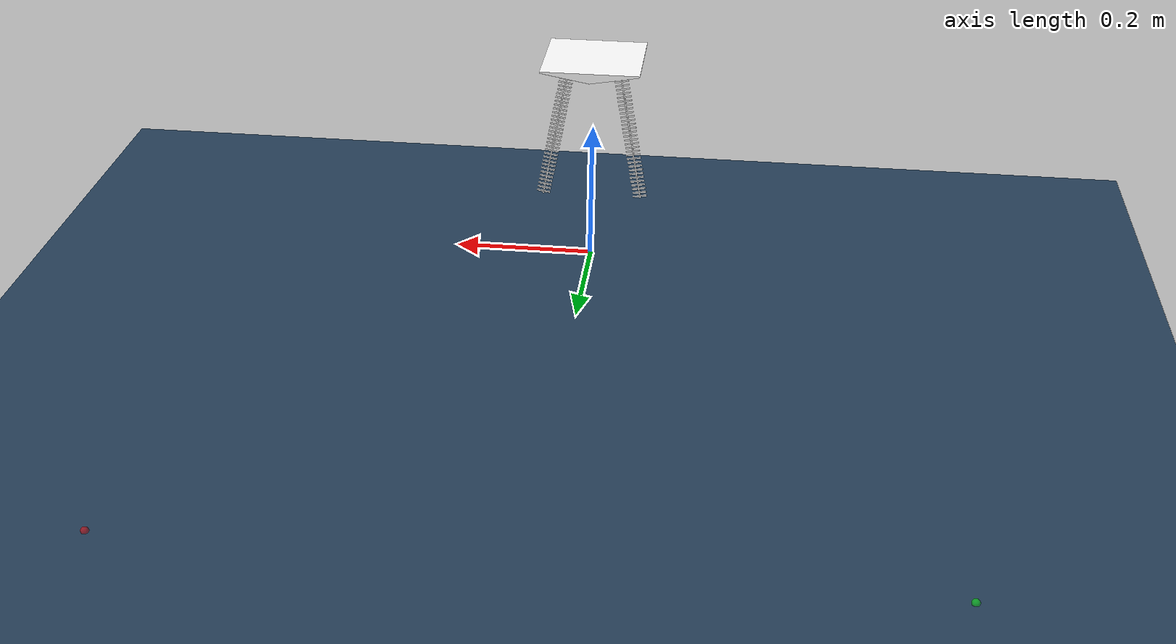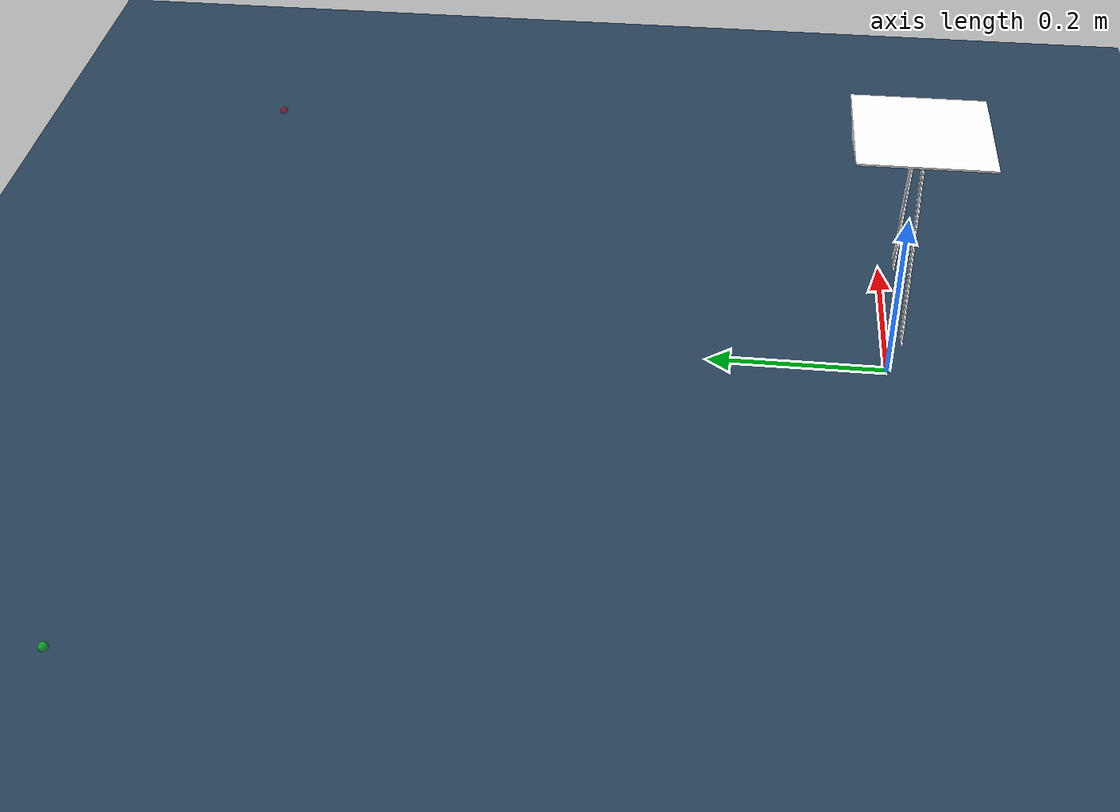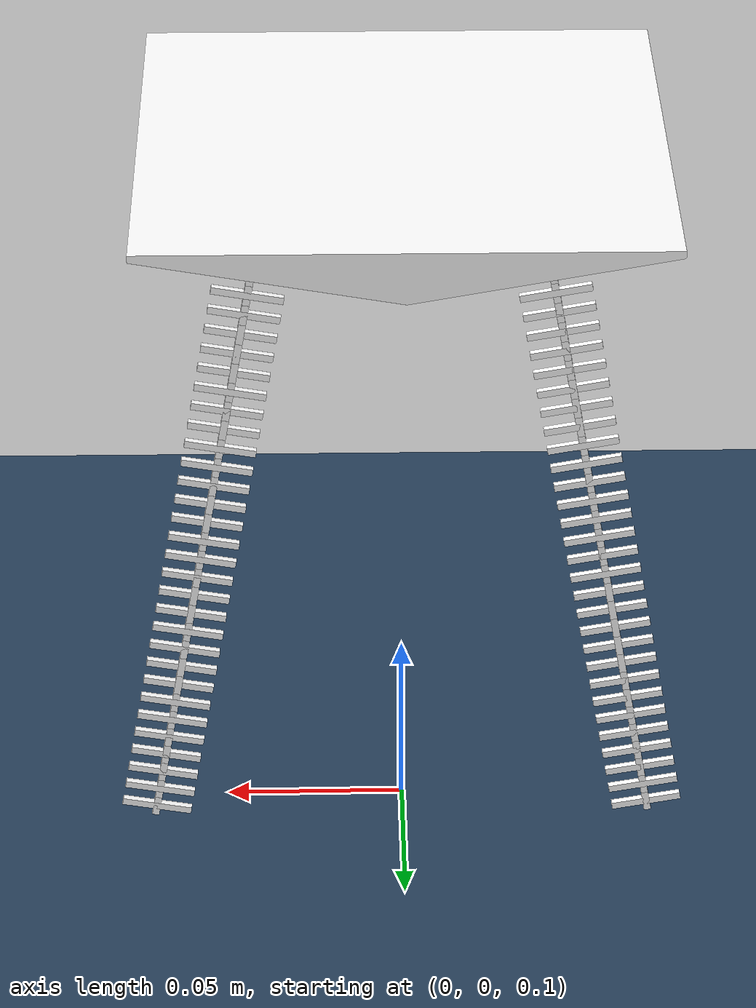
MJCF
<?xml version='1.0' encoding='utf-8'?>
<mujoco>
  <compiler autolimits="true" />
  <option timestep="0.01" gravity="0 0 -9.81" />
  <asset>
    <texture name="grid" type="2d" builtin="checker" width="512" height="512" rgb1=".1 .2 .3" rgb2=".2 .3 .4" />
    <material name="grid" texture="grid" texrepeat="10 10" texuniform="true" reflectance=".2" />
    <mesh name="palm" scale=".001 .001 .001" vertex=" 70   70   8.17               -70   70   8.17                70   -70   8.17                -70   -70   8.17                70   70   6.17               -70   70   6.17                70   -70   6.17                -70   -70   6.17                0   70   -6.17                0   -70   -6.17" />
  </asset>
  <default>
    <joint type="hinge" axis="0 1 0" damping="0.15" actuatorfrcrange="-0.5 0.5" />
    <default class="cross tate">
      <geom type="box" size=".001 .001 .003" rgba="1 1 1 1" pos="0 0 -.003" />
    </default>
    <default class="cross yoko">
      <geom type="box" size=".01 .001 .001" rgba="1 1 1 1" pos="0 0 -.003" />
    </default>
  </default>
  <worldbody>
    <site name="target_r" type="sphere" pos="-0.5 0.8 0" size="0.005" rgba="0 1 0 0.5" />
    <site name="target_l" type="sphere" pos="0.5 0.8 0" size="0.005" rgba="1 0 0 0.5" />
    <geom type="plane" size="3 3 .01" material="grid" />
    <body name="wirearm" pos="0 0 .3">
      <light pos="0 0 2" diffuse="1 1 1" ambient="0.2 0.2 0.2" />
      <light name="top light" pos="0 0 2" mode="trackcom" diffuse=".4 .4 .4" />
      <geom name="palm" type="mesh" mesh="palm" rgba="1 1 1 1" />
      <body name="right link1" pos=".035 0 0" quat="0 -0.08716 0 0.99619">
        <joint name="right link1" damping="0.15" />
        <geom class="cross tate" contype="0" conaffinity="0" />
        <geom class="cross yoko" contype="0" conaffinity="0" />
        <body name="right link2" pos="0 0 -.006">
          <joint name="right link2" damping="0.15" />
          <geom class="cross tate" contype="0" conaffinity="0" />
          <geom class="cross yoko" contype="0" conaffinity="0" />
          <body name="right link3" pos="0 0 -.006">
            <joint name="right link3" damping="0.15" />
            <geom class="cross tate" contype="0" conaffinity="0" />
            <geom class="cross yoko" contype="0" conaffinity="0" />
            <body name="right link4" pos="0 0 -.006">
              <joint name="right link4" damping="0.15" />
              <geom class="cross tate" contype="0" conaffinity="0" />
              <geom class="cross yoko" contype="0" conaffinity="0" />
              <body name="right link5" pos="0 0 -.006">
                <joint name="right link5" damping="0.15" />
                <geom class="cross tate" contype="0" conaffinity="0" />
                <geom class="cross yoko" contype="0" conaffinity="0" />
                <body name="right link6" pos="0 0 -.006">
                  <joint name="right link6" damping="0.15" />
                  <geom class="cross tate" contype="0" conaffinity="0" />
                  <geom class="cross yoko" contype="0" conaffinity="0" />
                  <body name="right link7" pos="0 0 -.006">
                    <joint name="right link7" damping="0.15" />
                    <geom class="cross tate" contype="0" conaffinity="0" />
                    <geom class="cross yoko" contype="0" conaffinity="0" />
                    <body name="right link8" pos="0 0 -.006">
                      <joint name="right link8" damping="0.15" />
                      <geom class="cross tate" contype="0" conaffinity="0" />
                      <geom class="cross yoko" contype="0" conaffinity="0" />
                      <body name="right link9" pos="0 0 -.006">
                        <joint name="right link9" damping="0.15" />
                        <geom class="cross tate" contype="0" conaffinity="0" />
                        <geom class="cross yoko" contype="0" conaffinity="0" />
                        <body name="right link10" pos="0 0 -.006">
                          <joint name="right link10" damping="0.15" />
                          <geom class="cross tate" contype="0" conaffinity="0" />
                          <geom class="cross yoko" contype="0" conaffinity="0" />
                          <body name="right link11" pos="0 0 -.006">
                            <joint name="right link11" damping="0.15" />
                            <geom class="cross tate" contype="0" conaffinity="0" />
                            <geom class="cross yoko" contype="0" conaffinity="0" />
                            <body name="right link12" pos="0 0 -.006">
                              <joint name="right link12" damping="0.15" />
                              <geom class="cross tate" contype="0" conaffinity="0" />
                              <geom class="cross yoko" contype="0" conaffinity="0" />
                              <body name="right link13" pos="0 0 -.006">
                                <joint name="right link13" damping="0.15" />
                                <geom class="cross tate" contype="0" conaffinity="0" />
                                <geom class="cross yoko" contype="0" conaffinity="0" />
                                <body name="right link14" pos="0 0 -.006">
                                  <joint name="right link14" damping="0.15" />
                                  <geom class="cross tate" contype="0" conaffinity="0" />
                                  <geom class="cross yoko" contype="0" conaffinity="0" />
                                  <body name="right link15" pos="0 0 -.006">
                                    <joint name="right link15" damping="0.15" />
                                    <geom class="cross tate" contype="0" conaffinity="0" />
                                    <geom class="cross yoko" contype="0" conaffinity="0" />
                                    <body name="right link16" pos="0 0 -.006">
                                      <joint name="right link16" damping="0.15" />
                                      <geom class="cross tate" contype="0" conaffinity="0" />
                                      <geom class="cross yoko" contype="0" conaffinity="0" />
                                      <body name="right link17" pos="0 0 -.006">
                                        <joint name="right link17" damping="0.15" />
                                        <geom class="cross tate" contype="0" conaffinity="0" />
                                        <geom class="cross yoko" contype="0" conaffinity="0" />
                                        <body name="right link18" pos="0 0 -.006">
                                          <joint name="right link18" damping="0.15" />
                                          <geom class="cross tate" contype="0" conaffinity="0" />
                                          <geom class="cross yoko" contype="0" conaffinity="0" />
                                          <body name="right link19" pos="0 0 -.006">
                                            <joint name="right link19" damping="0.15" />
                                            <geom class="cross tate" contype="0" conaffinity="0" />
                                            <geom class="cross yoko" contype="0" conaffinity="0" />
                                            <body name="right link20" pos="0 0 -.006">
                                              <joint name="right link20" damping="0.15" />
                                              <geom class="cross tate" contype="0" conaffinity="0" />
                                              <geom class="cross yoko" contype="0" conaffinity="0" />
                                              <body name="right link21" pos="0 0 -.006">
                                                <joint name="right link21" damping="0.15" />
                                                <geom class="cross tate" contype="0" conaffinity="0" />
                                                <geom class="cross yoko" contype="0" conaffinity="0" />
                                                <body name="right link22" pos="0 0 -.006">
                                                  <joint name="right link22" damping="0.15" />
                                                  <geom class="cross tate" contype="0" conaffinity="0" />
                                                  <geom class="cross yoko" contype="0" conaffinity="0" />
                                                  <body name="right link23" pos="0 0 -.006">
                                                    <joint name="right link23" damping="0.15" />
                                                    <geom class="cross tate" contype="0" conaffinity="0" />
                                                    <geom class="cross yoko" contype="0" conaffinity="0" />
                                                    <body name="right link24" pos="0 0 -.006">
                                                      <joint name="right link24" damping="0.15" />
                                                      <geom class="cross tate" contype="0" conaffinity="0" />
                                                      <geom class="cross yoko" contype="0" conaffinity="0" />
                                                      <body name="right link25" pos="0 0 -.006">
                                                        <joint name="right link25" damping="0.15" />
                                                        <geom class="cross tate" contype="0" conaffinity="0" />
                                                        <geom class="cross yoko" contype="0" conaffinity="0" />
                                                        <body name="right link26" pos="0 0 -.006">
                                                          <joint name="right link26" damping="0.15" />
                                                          <geom class="cross tate" contype="0" conaffinity="0" />
                                                          <geom class="cross yoko" contype="0" conaffinity="0" />
                                                          <body name="right link27" pos="0 0 -.006">
                                                            <joint name="right link27" damping="0.15" />
                                                            <geom class="cross tate" contype="0" conaffinity="0" />
                                                            <geom class="cross yoko" contype="0" conaffinity="0" />
                                                            <body name="right link28" pos="0 0 -.006">
                                                            <joint name="right link28" damping="0.15" />
                                                            <geom class="cross tate" contype="0" conaffinity="0" />
                                                            <geom class="cross yoko" contype="0" conaffinity="0" />
                                                            <body name="right link29" pos="0 0 -.006">
                                                            <joint name="right link29" damping="0.15" />
                                                            <geom class="cross tate" contype="0" conaffinity="0" />
                                                            <geom class="cross yoko" contype="0" conaffinity="0" />
                                                            <body name="right link30" pos="0 0 -.006">
                                                            <joint name="right link30" damping="0.15" />
                                                            <geom class="cross tate" contype="0" conaffinity="0" />
                                                            <geom class="cross yoko" contype="0" conaffinity="0" />
                                                            <body name="right link31" pos="0 0 -.006">
                                                            <joint name="right link31" damping="0.15" />
                                                            <geom class="cross tate" contype="0" conaffinity="0" />
                                                            <geom class="cross yoko" contype="0" conaffinity="0" />
                                                            <body name="right link32" pos="0 0 -.006">
                                                            <joint name="right link32" damping="0.15" />
                                                            <geom class="cross tate" contype="0" conaffinity="0" />
                                                            <geom class="cross yoko" contype="0" conaffinity="0" />
                                                            <body name="right link33" pos="0 0 -.006">
                                                            <joint name="right link33" damping="0.15" />
                                                            <geom class="cross tate" contype="0" conaffinity="0" />
                                                            <geom class="cross yoko" contype="0" conaffinity="0" />
                                                            <body name="right link34" pos="0 0 -.006">
                                                            <joint name="right link34" damping="0.15" />
                                                            <geom class="cross tate" contype="0" conaffinity="0" />
                                                            <geom class="cross yoko" contype="0" conaffinity="0" />
                                                            <body name="right link35" pos="0 0 -.006">
                                                            <joint name="right link35" damping="0.15" />
                                                            <geom class="cross tate" contype="0" conaffinity="0" />
                                                            <geom class="cross yoko" contype="0" conaffinity="0" />
                                                            </body>
                                                            </body>
                                                            </body>
                                                            </body>
                                                            </body>
                                                            </body>
                                                            </body>
                                                            </body>
                                                          </body>
                                                        </body>
                                                      </body>
                                                    </body>
                                                  </body>
                                                </body>
                                              </body>
                                            </body>
                                          </body>
                                        </body>
                                      </body>
                                    </body>
                                  </body>
                                </body>
                              </body>
                            </body>
                          </body>
                        </body>
                      </body>
                    </body>
                  </body>
                </body>
              </body>
            </body>
          </body>
        </body>
      </body>
      <body name="left link1" pos="-.035 0 0" quat="0.9962 0 0.0872 0">
        <joint name="left link1" damping="0.15" />
        <geom class="cross tate" pos="0 0 -.003" contype="0" conaffinity="0" />
        <geom class="cross yoko" pos="0 0 -.003" contype="0" conaffinity="0" />
        <body name="left link2" pos="0 0 -.006">
          <joint name="left link2" damping="0.15" />
          <geom class="cross tate" contype="0" conaffinity="0" />
          <geom class="cross yoko" contype="0" conaffinity="0" />
          <body name="left link3" pos="0 0 -.006">
            <joint name="left link3" damping="0.15" />
            <geom class="cross tate" contype="0" conaffinity="0" />
            <geom class="cross yoko" contype="0" conaffinity="0" />
            <body name="left link4" pos="0 0 -.006">
              <joint name="left link4" damping="0.15" />
              <geom class="cross tate" contype="0" conaffinity="0" />
              <geom class="cross yoko" contype="0" conaffinity="0" />
              <body name="left link5" pos="0 0 -.006">
                <joint name="left link5" damping="0.15" />
                <geom class="cross tate" contype="0" conaffinity="0" />
                <geom class="cross yoko" contype="0" conaffinity="0" />
                <body name="left link6" pos="0 0 -.006">
                  <joint name="left link6" damping="0.15" />
                  <geom class="cross tate" contype="0" conaffinity="0" />
                  <geom class="cross yoko" contype="0" conaffinity="0" />
                  <body name="left link7" pos="0 0 -.006">
                    <joint name="left link7" damping="0.15" />
                    <geom class="cross tate" contype="0" conaffinity="0" />
                    <geom class="cross yoko" contype="0" conaffinity="0" />
                    <body name="left link8" pos="0 0 -.006">
                      <joint name="left link8" damping="0.15" />
                      <geom class="cross tate" contype="0" conaffinity="0" />
                      <geom class="cross yoko" contype="0" conaffinity="0" />
                      <body name="left link9" pos="0 0 -.006">
                        <joint name="left link9" damping="0.15" />
                        <geom class="cross tate" contype="0" conaffinity="0" />
                        <geom class="cross yoko" contype="0" conaffinity="0" />
                        <body name="left link10" pos="0 0 -.006">
                          <joint name="left link10" damping="0.15" />
                          <geom class="cross tate" contype="0" conaffinity="0" />
                          <geom class="cross yoko" contype="0" conaffinity="0" />
                          <body name="left link11" pos="0 0 -.006">
                            <joint name="left link11" damping="0.15" />
                            <geom class="cross tate" contype="0" conaffinity="0" />
                            <geom class="cross yoko" contype="0" conaffinity="0" />
                            <body name="left link12" pos="0 0 -.006">
                              <joint name="left link12" damping="0.15" />
                              <geom class="cross tate" contype="0" conaffinity="0" />
                              <geom class="cross yoko" contype="0" conaffinity="0" />
                              <body name="left link13" pos="0 0 -.006">
                                <joint name="left link13" damping="0.15" />
                                <geom class="cross tate" contype="0" conaffinity="0" />
                                <geom class="cross yoko" contype="0" conaffinity="0" />
                                <body name="left link14" pos="0 0 -.006">
                                  <joint name="left link14" damping="0.15" />
                                  <geom class="cross tate" contype="0" conaffinity="0" />
                                  <geom class="cross yoko" contype="0" conaffinity="0" />
                                  <body name="left link15" pos="0 0 -.006">
                                    <joint name="left link15" damping="0.15" />
                                    <geom class="cross tate" contype="0" conaffinity="0" />
                                    <geom class="cross yoko" contype="0" conaffinity="0" />
                                    <body name="left link16" pos="0 0 -.006">
                                      <joint name="left link16" damping="0.15" />
                                      <geom class="cross tate" contype="0" conaffinity="0" />
                                      <geom class="cross yoko" contype="0" conaffinity="0" />
                                      <body name="left link17" pos="0 0 -.006">
                                        <joint name="left link17" damping="0.15" />
                                        <geom class="cross tate" contype="0" conaffinity="0" />
                                        <geom class="cross yoko" contype="0" conaffinity="0" />
                                        <body name="left link18" pos="0 0 -.006">
                                          <joint name="left link18" damping="0.15" />
                                          <geom class="cross tate" contype="0" conaffinity="0" />
                                          <geom class="cross yoko" contype="0" conaffinity="0" />
                                          <body name="left link19" pos="0 0 -.006">
                                            <joint name="left link19" damping="0.15" />
                                            <geom class="cross tate" contype="0" conaffinity="0" />
                                            <geom class="cross yoko" contype="0" conaffinity="0" />
                                            <body name="left link20" pos="0 0 -.006">
                                              <joint name="left link20" damping="0.15" />
                                              <geom class="cross tate" contype="0" conaffinity="0" />
                                              <geom class="cross yoko" contype="0" conaffinity="0" />
                                              <body name="left link21" pos="0 0 -.006">
                                                <joint name="left link21" damping="0.15" />
                                                <geom class="cross tate" contype="0" conaffinity="0" />
                                                <geom class="cross yoko" contype="0" conaffinity="0" />
                                                <body name="left link22" pos="0 0 -.006">
                                                  <joint name="left link22" damping="0.15" />
                                                  <geom class="cross tate" contype="0" conaffinity="0" />
                                                  <geom class="cross yoko" contype="0" conaffinity="0" />
                                                  <body name="left link23" pos="0 0 -.006">
                                                    <joint name="left link23" damping="0.15" />
                                                    <geom class="cross tate" contype="0" conaffinity="0" />
                                                    <geom class="cross yoko" contype="0" conaffinity="0" />
                                                    <body name="left link24" pos="0 0 -.006">
                                                      <joint name="left link24" damping="0.15" />
                                                      <geom class="cross tate" contype="0" conaffinity="0" />
                                                      <geom class="cross yoko" contype="0" conaffinity="0" />
                                                      <body name="left link25" pos="0 0 -.006">
                                                        <joint name="left link25" damping="0.15" />
                                                        <geom class="cross tate" contype="0" conaffinity="0" />
                                                        <geom class="cross yoko" contype="0" conaffinity="0" />
                                                        <body name="left link26" pos="0 0 -.006">
                                                          <joint name="left link26" damping="0.15" />
                                                          <geom class="cross tate" contype="0" conaffinity="0" />
                                                          <geom class="cross yoko" contype="0" conaffinity="0" />
                                                          <body name="left link27" pos="0 0 -.006">
                                                            <joint name="left link27" damping="0.15" />
                                                            <geom class="cross tate" contype="0" conaffinity="0" />
                                                            <geom class="cross yoko" contype="0" conaffinity="0" />
                                                            <body name="left link28" pos="0 0 -.006">
                                                            <joint name="left link28" damping="0.15" />
                                                            <geom class="cross tate" contype="0" conaffinity="0" />
                                                            <geom class="cross yoko" contype="0" conaffinity="0" />
                                                            <body name="left link29" pos="0 0 -.006">
                                                            <joint name="left link29" damping="0.15" />
                                                            <geom class="cross tate" contype="0" conaffinity="0" />
                                                            <geom class="cross yoko" contype="0" conaffinity="0" />
                                                            <body name="left link30" pos="0 0 -.006">
                                                            <joint name="left link30" damping="0.15" />
                                                            <geom class="cross tate" contype="0" conaffinity="0" />
                                                            <geom class="cross yoko" contype="0" conaffinity="0" />
                                                            <body name="left link31" pos="0 0 -.006">
                                                            <joint name="left link31" damping="0.15" />
                                                            <geom class="cross tate" contype="0" conaffinity="0" />
                                                            <geom class="cross yoko" contype="0" conaffinity="0" />
                                                            <body name="left link32" pos="0 0 -.006">
                                                            <joint name="left link32" damping="0.15" />
                                                            <geom class="cross tate" contype="0" conaffinity="0" />
                                                            <geom class="cross yoko" contype="0" conaffinity="0" />
                                                            <body name="left link33" pos="0 0 -.006">
                                                            <joint name="left link33" damping="0.15" />
                                                            <geom class="cross tate" contype="0" conaffinity="0" />
                                                            <geom class="cross yoko" contype="0" conaffinity="0" />
                                                            <body name="left link34" pos="0 0 -.006">
                                                            <joint name="left link34" damping="0.15" />
                                                            <geom class="cross tate" contype="0" conaffinity="0" />
                                                            <geom class="cross yoko" contype="0" conaffinity="0" />
                                                            <body name="left link35" pos="0 0 -.006">
                                                            <joint name="left link35" damping="0.15" />
                                                            <geom class="cross tate" contype="0" conaffinity="0" />
                                                            <geom class="cross yoko" contype="0" conaffinity="0" />
                                                            </body>
                                                            </body>
                                                            </body>
                                                            </body>
                                                            </body>
                                                            </body>
                                                            </body>
                                                            </body>
                                                          </body>
                                                        </body>
                                                      </body>
                                                    </body>
                                                  </body>
                                                </body>
                                              </body>
                                            </body>
                                          </body>
                                        </body>
                                      </body>
                                    </body>
                                  </body>
                                </body>
                              </body>
                            </body>
                          </body>
                        </body>
                      </body>
                    </body>
                  </body>
                </body>
              </body>
            </body>
          </body>
        </body>
      </body>
    </body>
  </worldbody>
  <actuator>
    <position joint="right link1" ctrlrange="-0.35 0.35" gear="1" />
    <position joint="right link2" ctrlrange="-0.35 0.35" gear="1" />
    <position joint="right link3" ctrlrange="-0.35 0.35" gear="1" />
    <position joint="right link4" ctrlrange="-0.35 0.35" gear="1" />
    <position joint="right link5" ctrlrange="-0.35 0.35" gear="1" />
    <position joint="right link6" ctrlrange="-0.35 0.35" gear="1" />
    <position joint="right link7" ctrlrange="-0.35 0.35" gear="1" />
    <position joint="right link8" ctrlrange="-0.35 0.35" gear="1" />
    <position joint="right link9" ctrlrange="-0.35 0.35" gear="1" />
    <position joint="right link10" ctrlrange="-0.35 0.35" gear="1" />
    <position joint="right link11" ctrlrange="-0.35 0.35" gear="1" />
    <position joint="right link12" ctrlrange="-0.35 0.35" gear="1" />
    <position joint="right link13" ctrlrange="-0.35 0.35" gear="1" />
    <position joint="right link14" ctrlrange="-0.35 0.35" gear="1" />
    <position joint="right link15" ctrlrange="-0.35 0.35" gear="1" />
    <position joint="right link16" ctrlrange="-0.35 0.35" gear="1" />
    <position joint="right link17" ctrlrange="-0.35 0.35" gear="1" />
    <position joint="right link18" ctrlrange="-0.35 0.35" gear="1" />
    <position joint="right link19" ctrlrange="-0.35 0.35" gear="1" />
    <position joint="right link20" ctrlrange="-0.35 0.35" gear="1" />
    <position joint="right link21" ctrlrange="-0.35 0.35" gear="1" />
    <position joint="right link22" ctrlrange="-0.35 0.35" gear="1" />
    <position joint="right link23" ctrlrange="-0.35 0.35" gear="1" />
    <position joint="right link24" ctrlrange="-0.35 0.35" gear="1" />
    <position joint="right link25" ctrlrange="-0.35 0.35" gear="1" />
    <position joint="right link26" ctrlrange="-0.35 0.35" gear="1" />
    <position joint="right link27" ctrlrange="-0.35 0.35" gear="1" />
    <position joint="right link28" ctrlrange="-0.35 0.35" gear="1" />
    <position joint="right link29" ctrlrange="-0.35 0.35" gear="1" />
    <position joint="right link30" ctrlrange="-0.35 0.35" gear="1" />
    <position joint="right link31" ctrlrange="-0.35 0.35" gear="1" />
    <position joint="right link32" ctrlrange="-0.35 0.35" gear="1" />
    <position joint="right link33" ctrlrange="-0.35 0.35" gear="1" />
    <position joint="right link34" ctrlrange="-0.35 0.35" gear="1" />
    <position joint="right link35" ctrlrange="-0.35 0.35" gear="1" />
    <position joint="left link1" ctrlrange="-0.35 0.35" gear="1" />
    <position joint="left link2" ctrlrange="-0.35 0.35" gear="1" />
    <position joint="left link3" ctrlrange="-0.35 0.35" gear="1" />
    <position joint="left link4" ctrlrange="-0.35 0.35" gear="1" />
    <position joint="left link5" ctrlrange="-0.35 0.35" gear="1" />
    <position joint="left link6" ctrlrange="-0.35 0.35" gear="1" />
    <position joint="left link7" ctrlrange="-0.35 0.35" gear="1" />
    <position joint="left link8" ctrlrange="-0.35 0.35" gear="1" />
    <position joint="left link9" ctrlrange="-0.35 0.35" gear="1" />
    <position joint="left link10" ctrlrange="-0.35 0.35" gear="1" />
    <position joint="left link11" ctrlrange="-0.35 0.35" gear="1" />
    <position joint="left link12" ctrlrange="-0.35 0.35" gear="1" />
    <position joint="left link13" ctrlrange="-0.35 0.35" gear="1" />
    <position joint="left link14" ctrlrange="-0.35 0.35" gear="1" />
    <position joint="left link15" ctrlrange="-0.35 0.35" gear="1" />
    <position joint="left link16" ctrlrange="-0.35 0.35" gear="1" />
    <position joint="left link17" ctrlrange="-0.35 0.35" gear="1" />
    <position joint="left link18" ctrlrange="-0.35 0.35" gear="1" />
    <position joint="left link19" ctrlrange="-0.35 0.35" gear="1" />
    <position joint="left link20" ctrlrange="-0.35 0.35" gear="1" />
    <position joint="left link21" ctrlrange="-0.35 0.35" gear="1" />
    <position joint="left link22" ctrlrange="-0.35 0.35" gear="1" />
    <position joint="left link23" ctrlrange="-0.35 0.35" gear="1" />
    <position joint="left link24" ctrlrange="-0.35 0.35" gear="1" />
    <position joint="left link25" ctrlrange="-0.35 0.35" gear="1" />
    <position joint="left link26" ctrlrange="-0.35 0.35" gear="1" />
    <position joint="left link27" ctrlrange="-0.35 0.35" gear="1" />
    <position joint="left link28" ctrlrange="-0.35 0.35" gear="1" />
    <position joint="left link29" ctrlrange="-0.35 0.35" gear="1" />
    <position joint="left link30" ctrlrange="-0.35 0.35" gear="1" />
    <position joint="left link31" ctrlrange="-0.35 0.35" gear="1" />
    <position joint="left link32" ctrlrange="-0.35 0.35" gear="1" />
    <position joint="left link33" ctrlrange="-0.35 0.35" gear="1" />
    <position joint="left link34" ctrlrange="-0.35 0.35" gear="1" />
    <position joint="left link35" ctrlrange="-0.35 0.35" gear="1" />
  </actuator>
</mujoco>
